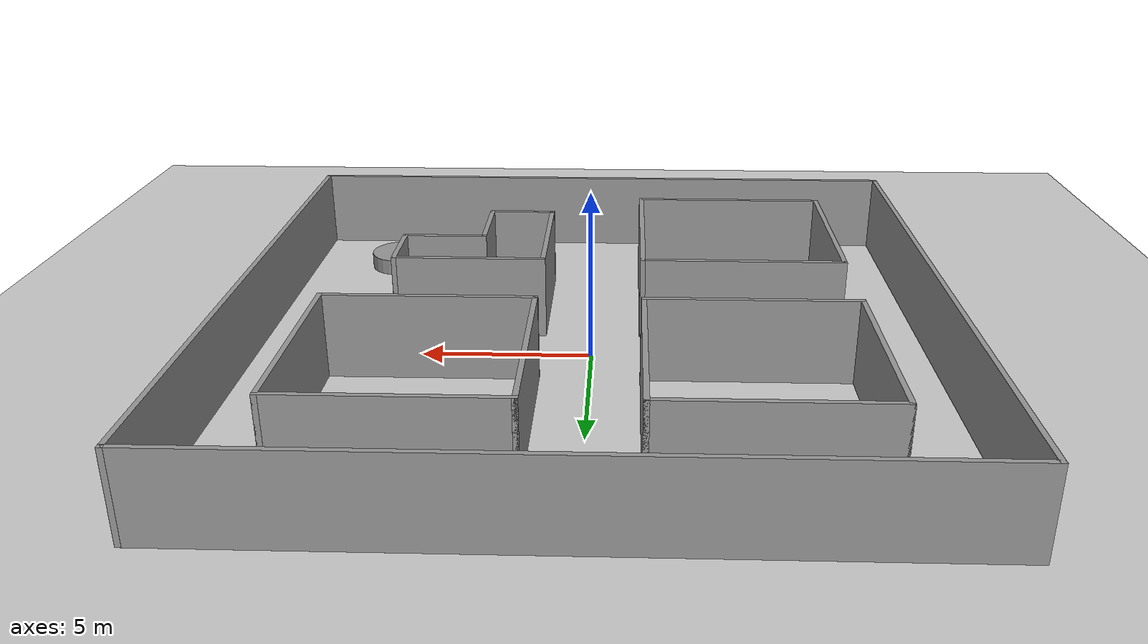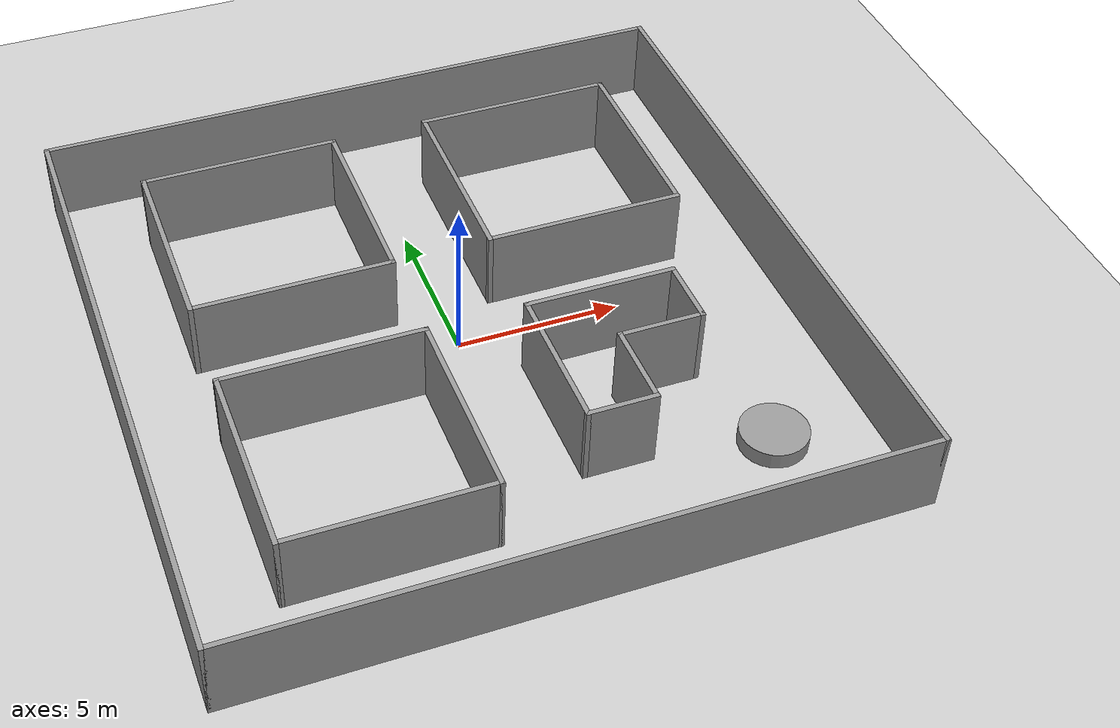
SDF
<sdf version="1.6">
 <world name="default">
  <light name="sun" type="directional">
   <pose>0 0 10 0 -0 0</pose>
   <diffuse>0.8 0.8 0.8 1</diffuse>
   <specular>0.2 0.2 0.2 1</specular>
   <attenuation>
    <range>1000</range>
    <constant>0.9</constant>
    <linear>0.01</linear>
    <quadratic>0.001</quadratic>
   </attenuation>
   <direction>-0.5 0.1 -0.9</direction>
  </light>
  <model name="ground_plane">
   <static>1</static>
   <link name="link">
    <collision name="collision">
     <geometry><plane><normal>0 0 1</normal><size>100 100</size></plane></geometry>
     <surface>
      <contact><collide_bitmask>65535</collide_bitmask></contact>
      <friction><ode><mu>100</mu><mu2>50</mu2></ode></friction>
     </surface>
    </collision>
    <visual name="visual">
     <cast_shadows>0</cast_shadows>
     <geometry><plane><normal>0 0 1</normal><size>100 100</size></plane></geometry>
     <material>
      <script><uri>file://media/materials/scripts/gazebo.material</uri><name>Gazebo/Grey</name></script>
     </material>
    </visual>
   </link>
  </model>
  <gravity>0 0 -9.8</gravity>
  <magnetic_field>6e-06 2.3e-05 -4.2e-05</magnetic_field>
  <atmosphere type="adiabatic"/>
  <physics name="default_physics" default="0" type="ode">
   <max_step_size>0.001</max_step_size>
   <real_time_factor>1</real_time_factor>
   <real_time_update_rate>1000</real_time_update_rate>
  </physics>
  <scene><ambient>0.4 0.4 0.4 1</ambient><background>0.7 0.7 0.7 1</background><shadows>1</shadows></scene>
  <audio><device>default</device></audio>
  <spherical_coordinates>
   <surface_model>EARTH_WGS84</surface_model>
   <latitude_deg>0</latitude_deg>
   <longitude_deg>0</longitude_deg>
   <elevation>0</elevation>
   <heading_deg>0</heading_deg>
  </spherical_coordinates>
  <model name="SLAM_hallway">
   <link name="Wall_13">
    <collision name="Wall_13_Collision">
     <geometry><box><size>20.15 0.15 2.5</size></box></geometry>
     <pose>0 0 1.25 0 -0 0</pose>
    </collision>
    <visual name="Wall_13_Visual">
     <pose>0 0 1.25 0 -0 0</pose>
     <geometry><box><size>20.15 0.15 2.5</size></box></geometry>
     <material>
      <script><uri>file://media/materials/scripts/gazebo.material</uri><name>Gazebo/Grey</name></script>
      <ambient>1 1 1 1</ambient>
     </material>
     <meta><layer>0</layer></meta>
    </visual>
    <pose>0 -10 0 0 -0 0</pose>
   </link>
   <link name="Wall_14">
    <collision name="Wall_14_Collision">
     <geometry><box><size>20.15 0.15 2.5</size></box></geometry>
     <pose>0 0 1.25 0 -0 0</pose>
    </collision>
    <visual name="Wall_14_Visual">
     <pose>0 0 1.25 0 -0 0</pose>
     <geometry><box><size>20.15 0.15 2.5</size></box></geometry>
     <material>
      <script><uri>file://media/materials/scripts/gazebo.material</uri><name>Gazebo/Grey</name></script>
      <ambient>1 1 1 1</ambient>
     </material>
     <meta><layer>0</layer></meta>
    </visual>
    <pose>10 0 0 0 -0 1.5708</pose>
   </link>
   <link name="Wall_15">
    <collision name="Wall_15_Collision">
     <geometry><box><size>20.15 0.15 2.5</size></box></geometry>
     <pose>0 0 1.25 0 -0 0</pose>
    </collision>
    <visual name="Wall_15_Visual">
     <pose>0 0 1.25 0 -0 0</pose>
     <geometry><box><size>20.15 0.15 2.5</size></box></geometry>
     <material>
      <script><uri>file://media/materials/scripts/gazebo.material</uri><name>Gazebo/Grey</name></script>
      <ambient>1 1 1 1</ambient>
     </material>
     <meta><layer>0</layer></meta>
    </visual>
    <pose>0 10 0 0 -0 3.14159</pose>
   </link>
   <link name="Wall_16">
    <collision name="Wall_16_Collision">
     <geometry><box><size>20.15 0.15 2.5</size></box></geometry>
     <pose>0 0 1.25 0 -0 0</pose>
    </collision>
    <visual name="Wall_16_Visual">
     <pose>0 0 1.25 0 -0 0</pose>
     <geometry><box><size>20.15 0.15 2.5</size></box></geometry>
     <material>
      <script><uri>file://media/materials/scripts/gazebo.material</uri><name>Gazebo/Grey</name></script>
      <ambient>1 1 1 1</ambient>
     </material>
     <meta><layer>0</layer></meta>
    </visual>
    <pose>-10 0 0 0 -0 -1.5708</pose>
   </link>
   <link name="Wall_18">
    <collision name="Wall_18_Collision">
     <geometry><box><size>6.15 0.15 2.5</size></box></geometry>
     <pose>0 0 1.25 0 -0 0</pose>
    </collision>
    <visual name="Wall_18_Visual">
     <pose>0 0 1.25 0 -0 0</pose>
     <geometry><box><size>6.15 0.15 2.5</size></box></geometry>
     <material>
      <script><uri>file://media/materials/scripts/gazebo.material</uri><name>Gazebo/Grey</name></script>
      <ambient>1 1 1 1</ambient>
     </material>
     <meta><layer>0</layer></meta>
    </visual>
    <pose>-4.5 -7.5 0 0 -0 0</pose>
   </link>
   <link name="Wall_19">
    <collision name="Wall_19_Collision">
     <geometry><box><size>6.15 0.15 2.5</size></box></geometry>
     <pose>0 0 1.25 0 -0 0</pose>
    </collision>
    <visual name="Wall_19_Visual">
     <pose>0 0 1.25 0 -0 0</pose>
     <geometry><box><size>6.15 0.15 2.5</size></box></geometry>
     <material>
      <script><uri>file://media/materials/scripts/gazebo.material</uri><name>Gazebo/Grey</name></script>
      <ambient>1 1 1 1</ambient>
     </material>
     <meta><layer>0</layer></meta>
    </visual>
    <pose>-1.5 -4.5 0 0 -0 1.5708</pose>
   </link>
   <link name="Wall_20">
    <collision name="Wall_20_Collision">
     <geometry><box><size>6.15083 0.15 2.5</size></box></geometry>
     <pose>0 0 1.25 0 -0 0</pose>
    </collision>
    <visual name="Wall_20_Visual">
     <pose>0 0 1.25 0 -0 0</pose>
     <geometry><box><size>6.15083 0.15 2.5</size></box></geometry>
     <material>
      <script><uri>file://media/materials/scripts/gazebo.material</uri><name>Gazebo/Grey</name></script>
      <ambient>1 1 1 1</ambient>
     </material>
     <meta><layer>0</layer></meta>
    </visual>
    <pose>-4.5 -1.5 0 0 -0 3.14159</pose>
   </link>
   <link name="Wall_21">
    <collision name="Wall_21_Collision">
     <geometry><box><size>6.15 0.15 2.5</size></box></geometry>
     <pose>0 0 1.25 0 -0 0</pose>
    </collision>
    <visual name="Wall_21_Visual">
     <pose>0 0 1.25 0 -0 0</pose>
     <geometry><box><size>6.15 0.15 2.5</size></box></geometry>
     <material>
      <script><uri>file://media/materials/scripts/gazebo.material</uri><name>Gazebo/Grey</name></script>
      <ambient>1 1 1 1</ambient>
     </material>
     <meta><layer>0</layer></meta>
    </visual>
    <pose>-7.5 -4.5 0 0 -0 -1.5708</pose>
   </link>
   <link name="Wall_24">
    <collision name="Wall_24_Collision">
     <geometry><box><size>6.15 0.15 2.5</size></box></geometry>
     <pose>0 0 1.25 0 -0 0</pose>
    </collision>
    <visual name="Wall_24_Visual">
     <pose>0 0 1.25 0 -0 0</pose>
     <geometry><box><size>6.15 0.15 2.5</size></box></geometry>
     <material>
      <script><uri>file://media/materials/scripts/gazebo.material</uri><name>Gazebo/Grey</name></script>
      <ambient>1 1 1 1</ambient>
     </material>
     <meta><layer>0</layer></meta>
    </visual>
    <pose>-4.5 7.5 0 0 -0 0</pose>
   </link>
   <link name="Wall_25">
    <collision name="Wall_25_Collision">
     <geometry><box><size>6.15 0.15 2.5</size></box></geometry>
     <pose>0 0 1.25 0 -0 0</pose>
    </collision>
    <visual name="Wall_25_Visual">
     <pose>0 0 1.25 0 -0 0</pose>
     <geometry><box><size>6.15 0.15 2.5</size></box></geometry>
     <material>
      <script><uri>file://media/materials/scripts/gazebo.material</uri><name>Gazebo/Grey</name></script>
      <ambient>1 1 1 1</ambient>
     </material>
     <meta><layer>0</layer></meta>
    </visual>
    <pose>-1.5 4.5 0 0 -0 -1.5708</pose>
   </link>
   <link name="Wall_26">
    <collision name="Wall_26_Collision">
     <geometry><box><size>6.15 0.15 2.5</size></box></geometry>
     <pose>0 0 1.25 0 -0 0</pose>
    </collision>
    <visual name="Wall_26_Visual">
     <pose>0 0 1.25 0 -0 0</pose>
     <geometry><box><size>6.15 0.15 2.5</size></box></geometry>
     <material>
      <script><uri>file://media/materials/scripts/gazebo.material</uri><name>Gazebo/Grey</name></script>
      <ambient>1 1 1 1</ambient>
     </material>
     <meta><layer>0</layer></meta>
    </visual>
    <pose>-4.5 1.5 0 0 -0 3.14159</pose>
   </link>
   <link name="Wall_28">
    <collision name="Wall_28_Collision">
     <geometry><box><size>6.15 0.15 2.5</size></box></geometry>
     <pose>0 0 1.25 0 -0 0</pose>
    </collision>
    <visual name="Wall_28_Visual">
     <pose>0 0 1.25 0 -0 0</pose>
     <geometry><box><size>6.15 0.15 2.5</size></box></geometry>
     <material>
      <script><uri>file://media/materials/scripts/gazebo.material</uri><name>Gazebo/Grey</name></script>
      <ambient>1 1 1 1</ambient>
     </material>
     <meta><layer>0</layer></meta>
    </visual>
    <pose>-7.5 4.5 0 0 -0 -1.5708</pose>
   </link>
   <link name="Wall_30">
    <collision name="Wall_30_Collision">
     <geometry><box><size>6.15 0.15 2.5</size></box></geometry>
     <pose>0 0 1.25 0 -0 0</pose>
    </collision>
    <visual name="Wall_30_Visual">
     <pose>0 0 1.25 0 -0 0</pose>
     <geometry><box><size>6.15 0.15 2.5</size></box></geometry>
     <material>
      <script><uri>file://media/materials/scripts/gazebo.material</uri><name>Gazebo/Grey</name></script>
      <ambient>1 1 1 1</ambient>
     </material>
     <meta><layer>0</layer></meta>
    </visual>
    <pose>1.5 4.5 0 0 -0 1.5708</pose>
   </link>
   <link name="Wall_31">
    <collision name="Wall_31_Collision">
     <geometry><box><size>6.15 0.15 2.5</size></box></geometry>
     <pose>0 0 1.25 0 -0 0</pose>
    </collision>
    <visual name="Wall_31_Visual">
     <pose>0 0 1.25 0 -0 0</pose>
     <geometry><box><size>6.15 0.15 2.5</size></box></geometry>
     <material>
      <script><uri>file://media/materials/scripts/gazebo.material</uri><name>Gazebo/Grey</name></script>
      <ambient>1 1 1 1</ambient>
     </material>
     <meta><layer>0</layer></meta>
    </visual>
    <pose>4.5 7.5 0 0 -0 0</pose>
   </link>
   <link name="Wall_32">
    <collision name="Wall_32_Collision">
     <geometry><box><size>6.15 0.15 2.5</size></box></geometry>
     <pose>0 0 1.25 0 -0 0</pose>
    </collision>
    <visual name="Wall_32_Visual">
     <pose>0 0 1.25 0 -0 0</pose>
     <geometry><box><size>6.15 0.15 2.5</size></box></geometry>
     <material>
      <script><uri>file://media/materials/scripts/gazebo.material</uri><name>Gazebo/Grey</name></script>
      <ambient>1 1 1 1</ambient>
     </material>
     <meta><layer>0</layer></meta>
    </visual>
    <pose>7.5 4.5 0 0 -0 -1.5708</pose>
   </link>
   <link name="Wall_33">
    <collision name="Wall_33_Collision">
     <geometry><box><size>6.15 0.15 2.5</size></box></geometry>
     <pose>0 0 1.25 0 -0 0</pose>
    </collision>
    <visual name="Wall_33_Visual">
     <pose>0 0 1.25 0 -0 0</pose>
     <geometry><box><size>6.15 0.15 2.5</size></box></geometry>
     <material>
      <script><uri>file://media/materials/scripts/gazebo.material</uri><name>Gazebo/Grey</name></script>
      <ambient>1 1 1 1</ambient>
     </material>
     <meta><layer>0</layer></meta>
    </visual>
    <pose>4.5 1.5 0 0 -0 3.14159</pose>
   </link>
   <link name="Wall_35">
    <collision name="Wall_35_Collision">
     <geometry><box><size>4.65 0.15 2.5</size></box></geometry>
     <pose>0 0 1.25 0 -0 0</pose>
    </collision>
    <visual name="Wall_35_Visual">
     <pose>0 0 1.25 0 -0 0</pose>
     <geometry><box><size>4.65 0.15 2.5</size></box></geometry>
     <material>
      <script><uri>file://media/materials/scripts/gazebo.material</uri><name>Gazebo/Grey</name></script>
      <ambient>1 1 1 1</ambient>
     </material>
     <meta><layer>0</layer></meta>
    </visual>
    <pose>3.75 -1.5 0 0 -0 0</pose>
   </link>
   <link name="Wall_37">
    <collision name="Wall_37_Collision">
     <geometry><box><size>2.15 0.15 2.5</size></box></geometry>
     <pose>0 0 1.25 0 -0 0</pose>
    </collision>
    <visual name="Wall_37_Visual">
     <pose>0 0 1.25 0 -0 0</pose>
     <geometry><box><size>2.15 0.15 2.5</size></box></geometry>
     <material>
      <script><uri>file://media/materials/scripts/gazebo.material</uri><name>Gazebo/Grey</name></script>
      <ambient>1 1 1 1</ambient>
     </material>
     <meta><layer>0</layer></meta>
    </visual>
    <pose>2.5 -6 0 0 -0 3.14159</pose>
   </link>
   <link name="Wall_38">
    <collision name="Wall_38_Collision">
     <geometry><box><size>4.65 0.15 2.5</size></box></geometry>
     <pose>0 0 1.25 0 -0 0</pose>
    </collision>
    <visual name="Wall_38_Visual">
     <pose>0 0 1.25 0 -0 0</pose>
     <geometry><box><size>4.65 0.15 2.5</size></box></geometry>
     <material>
      <script><uri>file://media/materials/scripts/gazebo.material</uri><name>Gazebo/Grey</name></script>
      <ambient>1 1 1 1</ambient>
     </material>
     <meta><layer>0</layer></meta>
    </visual>
    <pose>1.5 -3.75 0 0 -0 1.5708</pose>
   </link>
   <link name="Wall_40">
    <collision name="Wall_40_Collision">
     <geometry><box><size>2.65 0.15 2.5</size></box></geometry>
     <pose>0 0 1.25 0 -0 0</pose>
    </collision>
    <visual name="Wall_40_Visual">
     <pose>0 0 1.25 0 -0 0</pose>
     <geometry><box><size>2.65 0.15 2.5</size></box></geometry>
     <material>
      <script><uri>file://media/materials/scripts/gazebo.material</uri><name>Gazebo/Grey</name></script>
      <ambient>1 1 1 1</ambient>
     </material>
     <meta><layer>0</layer></meta>
    </visual>
    <pose>3.5 -4.75 0 0 -0 1.5708</pose>
   </link>
   <link name="Wall_41">
    <collision name="Wall_41_Collision">
     <geometry><box><size>2.65 0.15 2.5</size></box></geometry>
     <pose>0 0 1.25 0 -0 0</pose>
    </collision>
    <visual name="Wall_41_Visual">
     <pose>0 0 1.25 0 -0 0</pose>
     <geometry><box><size>2.65 0.15 2.5</size></box></geometry>
     <material>
      <script><uri>file://media/materials/scripts/gazebo.material</uri><name>Gazebo/Grey</name></script>
      <ambient>1 1 1 1</ambient>
     </material>
     <meta><layer>0</layer></meta>
    </visual>
    <pose>4.75 -3.5 0 0 -0 0</pose>
   </link>
   <link name="Wall_42">
    <collision name="Wall_42_Collision">
     <geometry><box><size>2.15 0.15 2.5</size></box></geometry>
     <pose>0 0 1.25 0 -0 0</pose>
    </collision>
    <visual name="Wall_42_Visual">
     <pose>0 0 1.25 0 -0 0</pose>
     <geometry><box><size>2.15 0.15 2.5</size></box></geometry>
     <material>
      <script><uri>file://media/materials/scripts/gazebo.material</uri><name>Gazebo/Grey</name></script>
      <ambient>1 1 1 1</ambient>
     </material>
     <meta><layer>0</layer></meta>
    </visual>
    <pose>6 -2.5 0 0 -0 1.5708</pose>
   </link>
   <static>1</static>
  </model>
  <model name="table">
   <link name="link">
    <inertial>
     <mass>1</mass>
     <inertia><ixx>0.145833</ixx><ixy>0</ixy><ixz>0</ixz><iyy>0.145833</iyy><iyz>0</iyz><izz>0.125</izz></inertia>
    </inertial>
    <visual name="visual">
     <geometry><cylinder><radius>1</radius><length>0.5</length></cylinder></geometry>
     <material>
      <script><name>Gazebo/Grey</name><uri>file://media/materials/scripts/gazebo.material</uri></script>
      <shader type="vertex"><normal_map>__default__</normal_map></shader>
      <ambient>0.3 0.3 0.3 1</ambient>
      <diffuse>0.7 0.7 0.7 1</diffuse>
      <specular>0.01 0.01 0.01 1</specular>
      <emissive>0 0 0 1</emissive>
     </material>
    </visual>
    <collision name="collision">
     <geometry><cylinder><radius>0.5</radius><length>1</length></cylinder></geometry>
     <surface>
      <friction>
       <ode><mu>1</mu><mu2>1</mu2><fdir1>0 0 0</fdir1><slip1>0</slip1><slip2>0</slip2></ode>
       <torsional>
        <coefficient>1</coefficient>
        <patch_radius>0</patch_radius>
        <surface_radius>0</surface_radius>
        <use_patch_radius>1</use_patch_radius>
        <ode><slip>0</slip></ode>
       </torsional>
      </friction>
      <bounce><restitution_coefficient>0</restitution_coefficient><threshold>1e+06</threshold></bounce>
      <contact>
       <collide_without_contact>0</collide_without_contact>
       <collide_without_contact_bitmask>1</collide_without_contact_bitmask>
       <collide_bitmask>1</collide_bitmask>
       <ode>
        <soft_cfm>0</soft_cfm>
        <soft_erp>0.2</soft_erp>
        <kp>1e+13</kp>
        <kd>1</kd>
        <max_vel>0.01</max_vel>
        <min_depth>0</min_depth>
       </ode>
       <bullet>
        <split_impulse>1</split_impulse>
        <split_impulse_penetration_threshold>-0.01</split_impulse_penetration_threshold>
        <soft_cfm>0</soft_cfm>
        <soft_erp>0.2</soft_erp>
        <kp>1e+13</kp>
        <kd>1</kd>
       </bullet>
      </contact>
     </surface>
    </collision>
   </link>
   <static>1</static>
   <pose>6.8277 -6.76212 0.499997 3e-06 4e-06 -0</pose>
  </model>
 </world>
</sdf>
